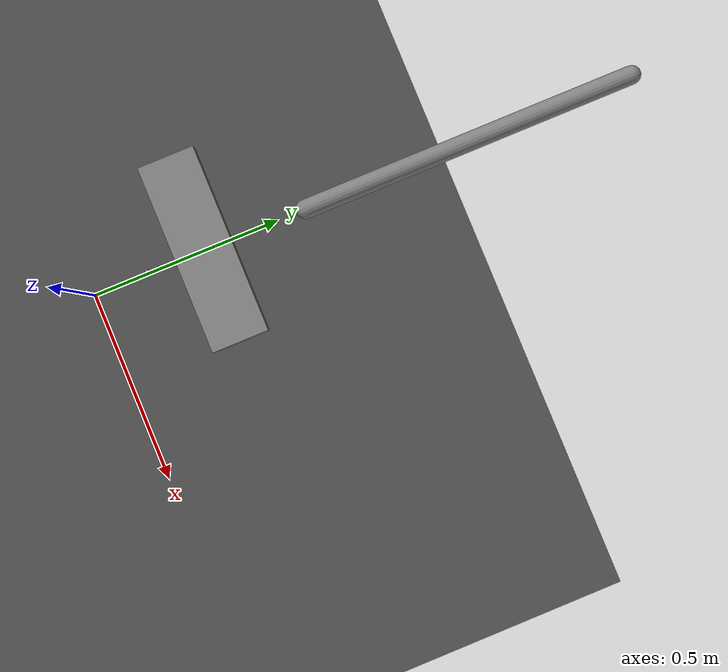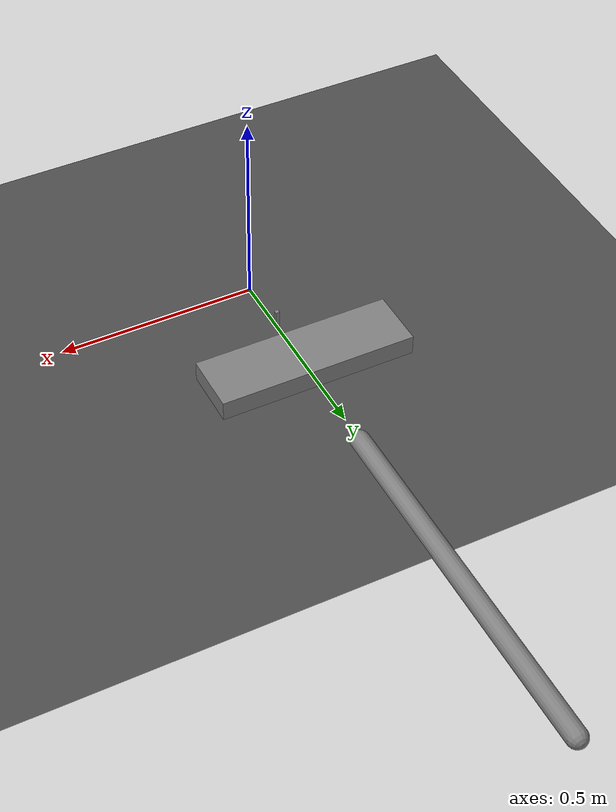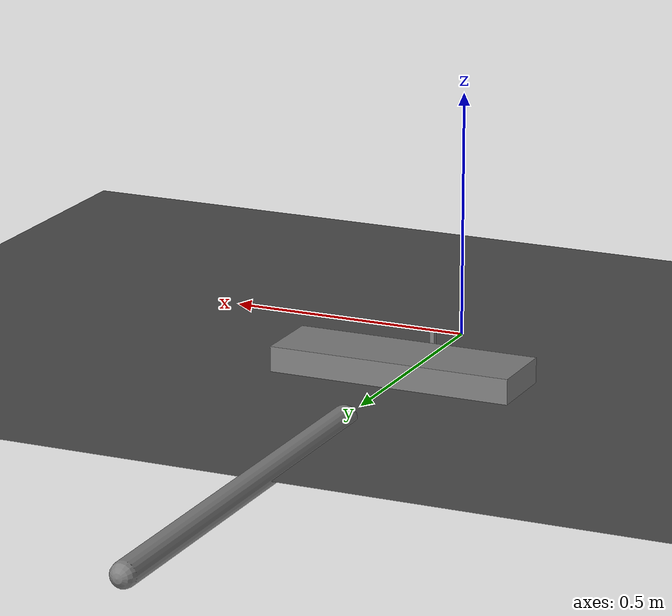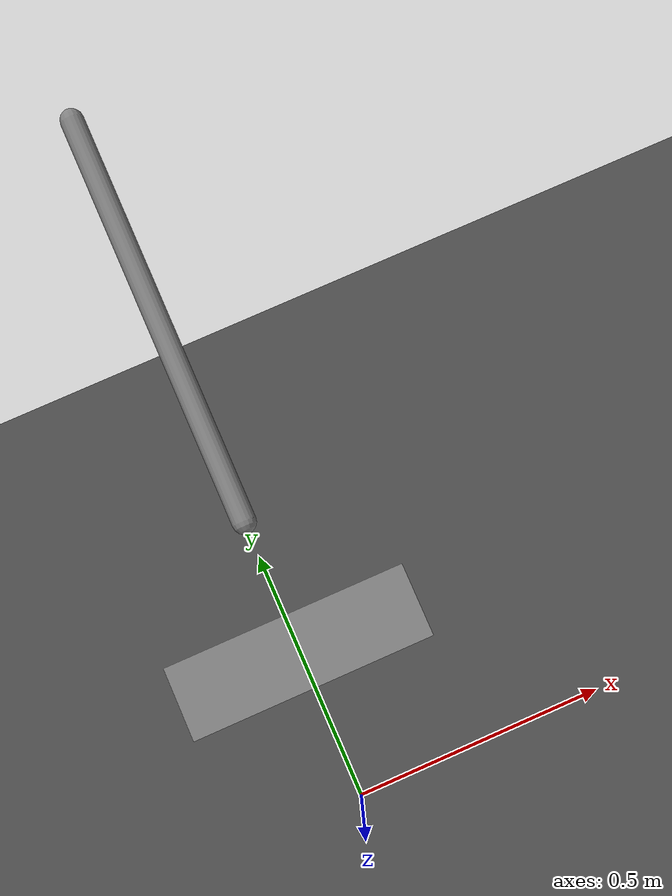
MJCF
<mujoco model="cartpole">
  <compiler angle="radian" />
  <option gravity="0 -9.8 0" />
  <default>
    <geom friction="0.0" />
    <joint damping="0.0" />
  </default>
  <custom>
    <numeric name="gravityScale" data="1" />
    <text name="forwardBody" data="torso" />
    <numeric name="groundY" data="-0.05" />
    <numeric name="groundFriction" data="0" />
    <numeric name="groundRestitution" data="0" />
    <text name="defaultReward" data="{&quot;forwardVelWeight&quot;:0,&quot;aliveBonusWeight&quot;:1,&quot;ctrlCostWeight&quot;:0,&quot;terminationPenalty&quot;:1,&quot;cartPositionLimit&quot;:2.4,&quot;poleAngleLimit&quot;:0.4188790204786391,&quot;anglePenaltyWeight&quot;:0.5,&quot;positionPenaltyWeight&quot;:0.1}" />
  </custom>
  <worldbody>
    <geom name="ground" type="plane" pos="0 -0.05 0" size="50 1 1" friction="0 0 0" rgba="0.3 0.3 0.3 1" />
    <body name="anchor" pos="0 0.15 0" rl-forge:fixed="true">
      <geom name="anchor" type="box" size="0.005 0.005 0.05" mass="1" friction="0" />
      <body name="torso" pos="0 0.15 0">
        <joint name="rail" type="slide" axis="1 0 0" limited="true" range="-2.4 2.4" pos="0 0 0" damping="0" rl-forge:maxVelocity="20" rl-forge:anchorA="0 0" />
        <geom name="torso" type="box" size="0.25 0.075 0.05" mass="1" friction="0" rl-forge:minY="-10" rl-forge:maxAngle="100" />
        <body name="pole" pos="0 0.725 0">
          <joint name="hinge" type="hinge" axis="0 0 1" limited="true" range="-3.14159 3.14159" pos="0 -0.5 0" damping="0" rl-forge:maxVelocity="20" rl-forge:anchorA="0 0.075" />
          <geom name="pole" type="capsule" size="0.025" fromto="0 -0.45 0 0 0.45 0" mass="0.1" friction="0" />
        </body>
      </body>
    </body>
  </worldbody>
  <actuator>
    <motor name="rail_motor" joint="rail" gear="10" ctrllimited="true" ctrlrange="-1 1" />
  </actuator>
</mujoco>
